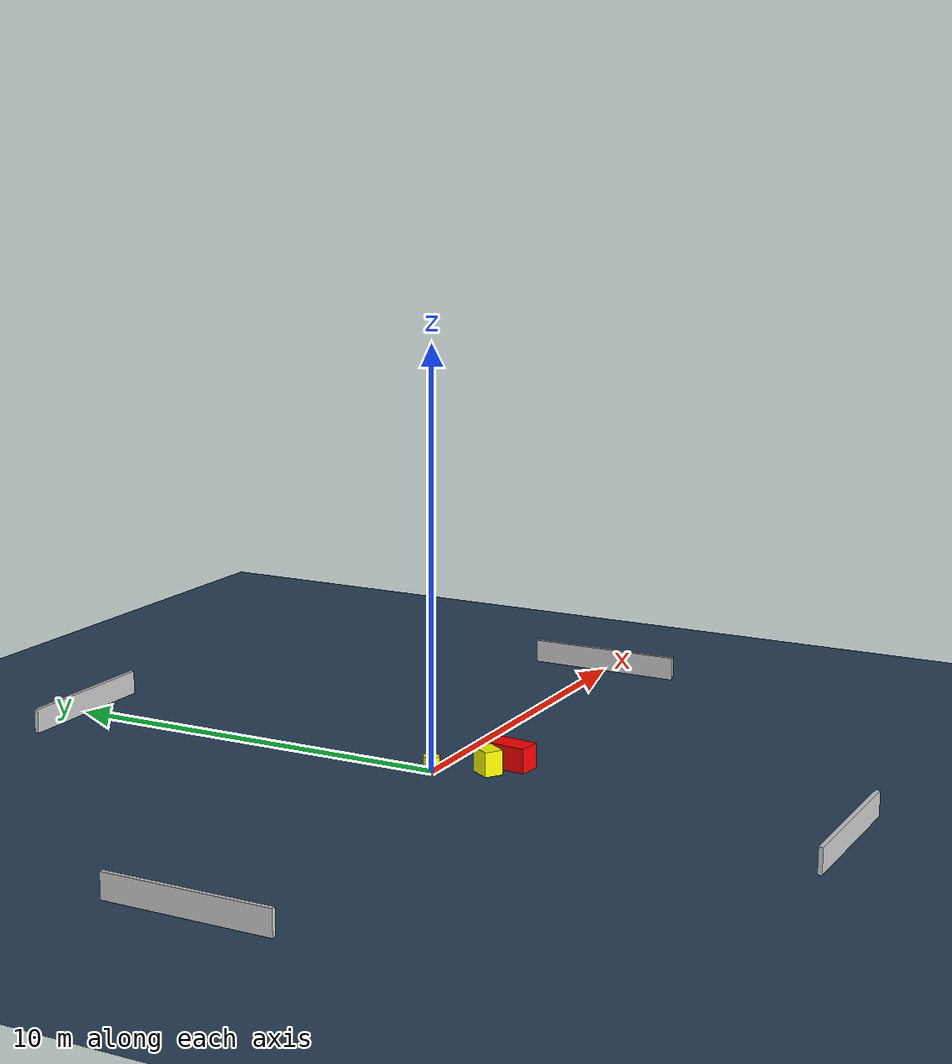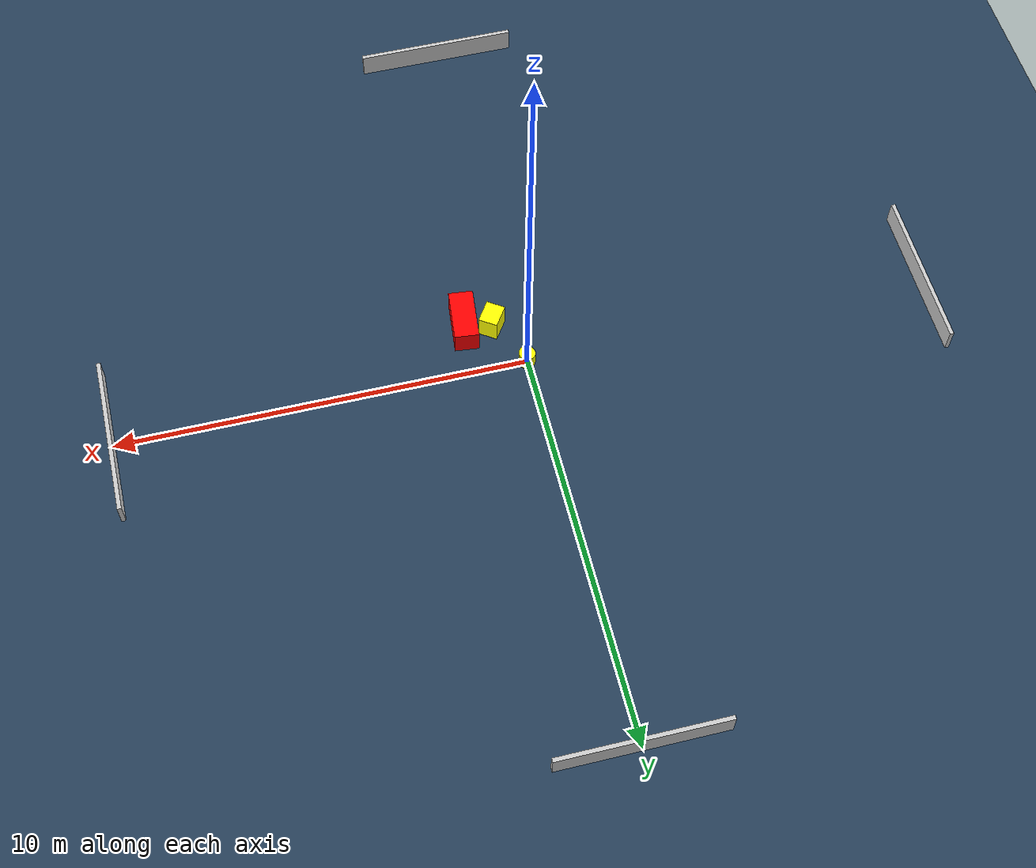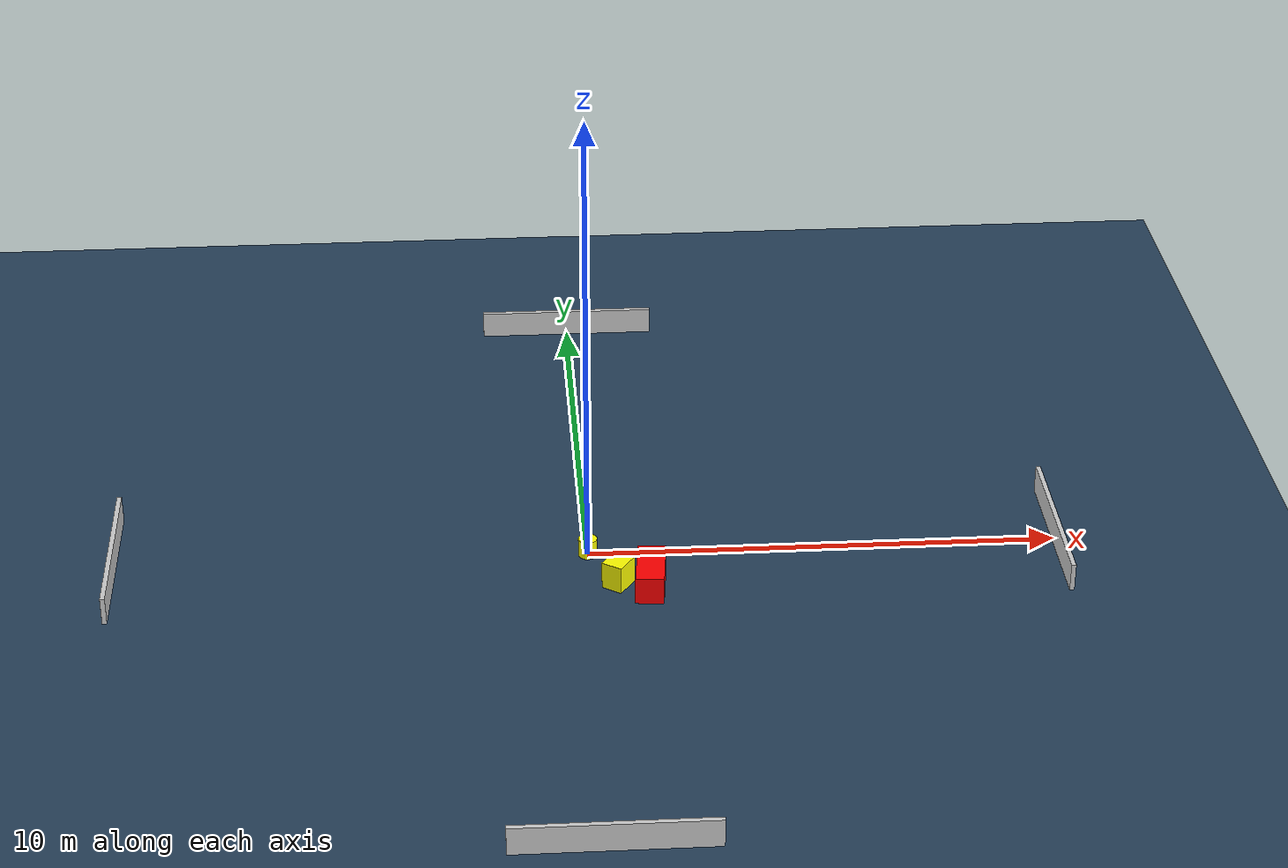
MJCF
<?xml version="1.0" ?>
<mujoco model="generated_environment">
  <option timestep="0.01" integrator="RK4" cone="elliptic"/>
  <default>
    <geom density="1"/>
  </default>
  <asset>
    <texture builtin="gradient" height="3072" name="skybox" rgb1="0.3 0.5 0.7" rgb2="0 0 0" type="skybox" width="512"/>
    <texture builtin="checker" height="300" name="groundplane" rgb1="0.2 0.3 0.4" rgb2="0.1 0.2 0.3" type="2d" width="300"/>
    <material name="groundplane" reflectance="0.2" texrepeat="5 5" texture="groundplane"/>
  </asset>
  <worldbody>
    <light dir="0 0 -1" directional="true" pos="0 0 1.5"/>
    <geom condim="3" friction="0.5 0.005 0.001" material="groundplane" name="floor" pos="0 0 0" size="0 0 0.05" type="plane"/>
    <body name="walls">
      <geom name="wall_1" condim="4" pos="-10.0 0.0 0.3" rgba="0.800000011920929 0.800000011920929 0.800000011920929 1.0" size="0.05 2.0 0.3" type="box"/>
      <geom name="wall_2" condim="4" pos="10.0 0.0 0.3" rgba="0.800000011920929 0.800000011920929 0.800000011920929 1.0" size="0.05 2.0 0.3" type="box"/>
      <geom name="wall_3" condim="4" pos="0.0 -10.0 0.3" rgba="0.800000011920929 0.800000011920929 0.800000011920929 1.0" size="2.0 0.05 0.3" type="box"/>
      <geom name="wall_4" condim="4" pos="0.0 10.0 0.3" rgba="0.800000011920929 0.800000011920929 0.800000011920929 1.0" size="2.0 0.05 0.3" type="box"/>
    </body>
    <body name="robot">
      <joint name="joint_x" type="slide" pos="0 0 0" axis="1 0 0"/>
      <joint name="joint_y" type="slide" pos="0 0 0" axis="0 1 0"/>
      <geom name="robot" type="cylinder" pos="0.0 0.0 0.2" size="0.2 0.2 0.0" mass="5.0" friction="1.0 0.005 0.0001" condim="4" rgba="1.0 1.0 0.0 1.0"/>
    </body>
    <body name="obstacle_1_movable">
      <geom name="obstacle_1_movable" condim="4" pos="0.5859815673000641 -1.180204825241355 0.3" euler="0 0 145.93503606620004" friction="0.0 0.005 0.001" rgba="1.0 1.0 0.0 1.0" size="0.23430660990724725 0.28490981792367653 0.3" type="box" mass="0.1"/>
      <joint type="free"/>
    </body>
    <body name="obstacle_2_static">
      <geom name="obstacle_2_static" condim="4" pos="1.2512931660703603 -1.3285889770084054 0.3" euler="0 0 264.0322668146889" friction="0.0 0.005 0.001" rgba="1.0 0.0 0.0 1.0" size="0.6442251421257859 0.2977795617545392 0.3" type="box"/>
    </body>
  </worldbody>
  <actuator>
    <motor name="actuator_x" joint="joint_x" gear="1" ctrlrange="-1 1"/>
    <motor name="actuator_y" joint="joint_y" gear="1" ctrlrange="-1 1"/>
  </actuator>
</mujoco>
